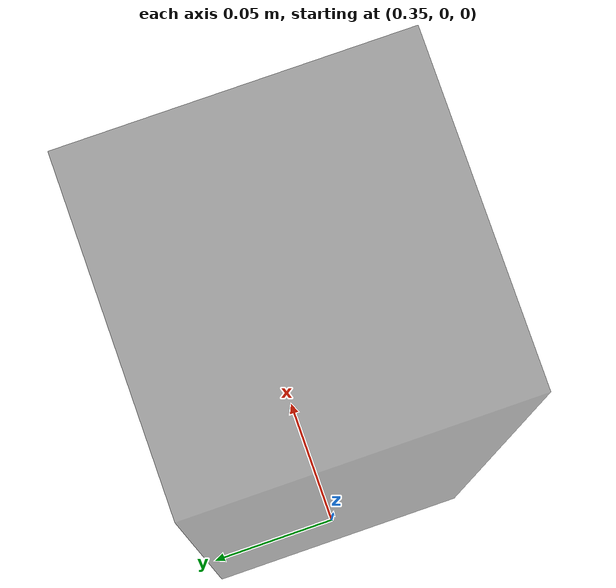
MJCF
<?xml version="1.0" ?>
<mujoco model="push force box">
  <worldbody>
    <body name="box" pos="0.392 0.0 0.2">
      <geom type="box" pos="0.0 0.0 0.0" size="0.05 0.05 0.2" rgba="0.3 0.3 0.3 0.5" group="1" mass="0.01" inertia="0.001 0.001 0.001" friction="1.0 0.01 0.001"/>
    </body>
  </worldbody>
</mujoco>
